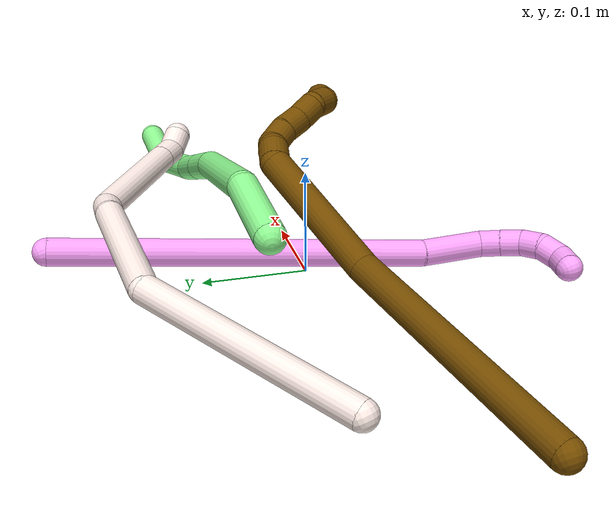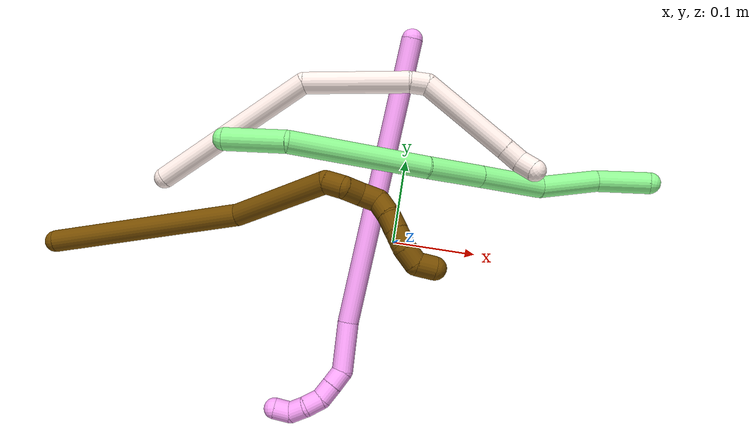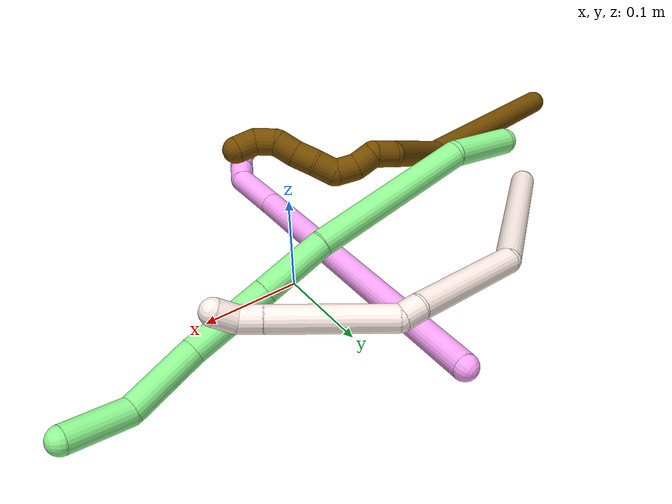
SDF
<sdf version="1.7">
 <world name="default">
  <model name="4">
   <static>0</static>
   <link name="4">
    <collision name="collision-cylinder-e_1_1_4">
     <pose>-0.015984 -0.058443 -0.159126 2.78961 -0.094012 -0.517208</pose>
     <geometry><cylinder><radius>0.0125</radius><length>0.340542</length></cylinder></geometry>
     <surface>
      <friction><ode><mu>1.16</mu><mu2>1.16</mu2><slip1>0</slip1><slip2>0</slip2></ode></friction>
      <contact><ode><kp>1e+06</kp><kd>1</kd><max_vel>0</max_vel><min_depth>0.001</min_depth></ode></contact>
     </surface>
    </collision>
    <visual name="visual-cylinder-e_1_1_4">
     <pose>-0.015984 -0.058443 -0.159126 2.78961 -0.094012 -0.517208</pose>
     <geometry><cylinder><radius>0.0125</radius><length>0.340542</length></cylinder></geometry>
     <material><ambient>1 0.65098 0.996078 1</ambient></material>
    </visual>
    <collision name="collision-cylinder-e_2_4_5">
     <pose>-0.033386 -0.122683 -0.34701 2.94267 -0.048302 -0.474997</pose>
     <geometry><cylinder><radius>0.0125</radius><length>0.05874</length></cylinder></geometry>
     <surface>
      <friction><ode><mu>1.16</mu><mu2>1.16</mu2><slip1>0</slip1><slip2>0</slip2></ode></friction>
      <contact><ode><kp>1e+06</kp><kd>1</kd><max_vel>0</max_vel><min_depth>0.001</min_depth></ode></contact>
     </surface>
    </collision>
    <visual name="visual-cylinder-e_2_4_5">
     <pose>-0.033386 -0.122683 -0.34701 2.94267 -0.048302 -0.474997</pose>
     <geometry><cylinder><radius>0.0125</radius><length>0.05874</length></cylinder></geometry>
     <material><ambient>1 0.65098 0.996078 1</ambient></material>
    </visual>
    <collision name="collision-cylinder-e_3_5_6">
     <pose>-0.031273 -0.133802 -0.383654 2.54802 0.355436 1.06209</pose>
     <geometry><cylinder><radius>0.0125</radius><length>0.020297</length></cylinder></geometry>
     <surface>
      <friction><ode><mu>1.16</mu><mu2>1.16</mu2><slip1>0</slip1><slip2>0</slip2></ode></friction>
      <contact><ode><kp>1e+06</kp><kd>1</kd><max_vel>0</max_vel><min_depth>0.001</min_depth></ode></contact>
     </surface>
    </collision>
    <visual name="visual-cylinder-e_3_5_6">
     <pose>-0.031273 -0.133802 -0.383654 2.54802 0.355436 1.06209</pose>
     <geometry><cylinder><radius>0.0125</radius><length>0.020297</length></cylinder></geometry>
     <material><ambient>1 0.65098 0.996078 1</ambient></material>
    </visual>
    <collision name="collision-cylinder-e_4_6_7">
     <pose>-0.024373 -0.144705 -0.399197 2.51161 0.341538 0.973534</pose>
     <geometry><cylinder><radius>0.0125</radius><length>0.020112</length></cylinder></geometry>
     <surface>
      <friction><ode><mu>1.16</mu><mu2>1.16</mu2><slip1>0</slip1><slip2>0</slip2></ode></friction>
      <contact><ode><kp>1e+06</kp><kd>1</kd><max_vel>0</max_vel><min_depth>0.001</min_depth></ode></contact>
     </surface>
    </collision>
    <visual name="visual-cylinder-e_4_6_7">
     <pose>-0.024373 -0.144705 -0.399197 2.51161 0.341538 0.973534</pose>
     <geometry><cylinder><radius>0.0125</radius><length>0.020112</length></cylinder></geometry>
     <material><ambient>1 0.65098 0.996078 1</ambient></material>
    </visual>
    <collision name="collision-cylinder-e_5_7_8">
     <pose>-0.016007 -0.157964 -0.411203 2.08623 0.51536 0.849348</pose>
     <geometry><cylinder><radius>0.0125</radius><length>0.02028</length></cylinder></geometry>
     <surface>
      <friction><ode><mu>1.16</mu><mu2>1.16</mu2><slip1>0</slip1><slip2>0</slip2></ode></friction>
      <contact><ode><kp>1e+06</kp><kd>1</kd><max_vel>0</max_vel><min_depth>0.001</min_depth></ode></contact>
     </surface>
    </collision>
    <visual name="visual-cylinder-e_5_7_8">
     <pose>-0.016007 -0.157964 -0.411203 2.08623 0.51536 0.849348</pose>
     <geometry><cylinder><radius>0.0125</radius><length>0.02028</length></cylinder></geometry>
     <material><ambient>1 0.65098 0.996078 1</ambient></material>
    </visual>
    <collision name="collision-cylinder-e_6_8_9">
     <pose>-0.009058 -0.174956 -0.418636 1.89057 0.196335 0.271038</pose>
     <geometry><cylinder><radius>0.0125</radius><length>0.020008</length></cylinder></geometry>
     <surface>
      <friction><ode><mu>1.16</mu><mu2>1.16</mu2><slip1>0</slip1><slip2>0</slip2></ode></friction>
      <contact><ode><kp>1e+06</kp><kd>1</kd><max_vel>0</max_vel><min_depth>0.001</min_depth></ode></contact>
     </surface>
    </collision>
    <visual name="visual-cylinder-e_6_8_9">
     <pose>-0.009058 -0.174956 -0.418636 1.89057 0.196335 0.271038</pose>
     <geometry><cylinder><radius>0.0125</radius><length>0.020008</length></cylinder></geometry>
     <material><ambient>1 0.65098 0.996078 1</ambient></material>
    </visual>
    <collision name="collision-cylinder-e_7_9_2">
     <pose>-0.001841 -0.192361 -0.419073 1.25449 0.553939 0.406454</pose>
     <geometry><cylinder><radius>0.0125</radius><length>0.02002</length></cylinder></geometry>
     <surface>
      <friction><ode><mu>1.16</mu><mu2>1.16</mu2><slip1>0</slip1><slip2>0</slip2></ode></friction>
      <contact><ode><kp>1e+06</kp><kd>1</kd><max_vel>0</max_vel><min_depth>0.001</min_depth></ode></contact>
     </surface>
    </collision>
    <visual name="visual-cylinder-e_7_9_2">
     <pose>-0.001841 -0.192361 -0.419073 1.25449 0.553939 0.406454</pose>
     <geometry><cylinder><radius>0.0125</radius><length>0.02002</length></cylinder></geometry>
     <material><ambient>1 0.65098 0.996078 1</ambient></material>
    </visual>
    <collision name="collision-sphere-2">
     <pose>0.003425 -0.200451 -0.416424 0 -0 0</pose>
     <geometry><sphere><radius>0.0125</radius></sphere></geometry>
     <surface>
      <friction><ode><mu>1.16</mu><mu2>1.16</mu2><slip1>0</slip1><slip2>0</slip2></ode></friction>
      <contact><ode><kp>1e+06</kp><kd>1</kd><max_vel>0</max_vel><min_depth>0.001</min_depth></ode></contact>
     </surface>
    </collision>
    <visual name="visual-sphere-2">
     <pose>0.003425 -0.200451 -0.416424 0 -0 0</pose>
     <geometry><sphere><radius>0.0125</radius></sphere></geometry>
     <material><ambient>1 0.65098 0.996078 1</ambient></material>
    </visual>
    <collision name="collision-sphere-9">
     <pose>-0.007106 -0.18427 -0.421721 0 -0 0</pose>
     <geometry><sphere><radius>0.0125</radius></sphere></geometry>
     <surface>
      <friction><ode><mu>1.16</mu><mu2>1.16</mu2><slip1>0</slip1><slip2>0</slip2></ode></friction>
      <contact><ode><kp>1e+06</kp><kd>1</kd><max_vel>0</max_vel><min_depth>0.001</min_depth></ode></contact>
     </surface>
    </collision>
    <visual name="visual-sphere-9">
     <pose>-0.007106 -0.18427 -0.421721 0 -0 0</pose>
     <geometry><sphere><radius>0.0125</radius></sphere></geometry>
     <material><ambient>1 0.65098 0.996078 1</ambient></material>
    </visual>
    <collision name="collision-sphere-4">
     <pose>-0.031968 -0.116886 -0.318253 0 -0 0</pose>
     <geometry><sphere><radius>0.0125</radius></sphere></geometry>
     <surface>
      <friction><ode><mu>1.16</mu><mu2>1.16</mu2><slip1>0</slip1><slip2>0</slip2></ode></friction>
      <contact><ode><kp>1e+06</kp><kd>1</kd><max_vel>0</max_vel><min_depth>0.001</min_depth></ode></contact>
     </surface>
    </collision>
    <visual name="visual-sphere-4">
     <pose>-0.031968 -0.116886 -0.318253 0 -0 0</pose>
     <geometry><sphere><radius>0.0125</radius></sphere></geometry>
     <material><ambient>1 0.65098 0.996078 1</ambient></material>
    </visual>
    <collision name="collision-sphere-1">
     <geometry><sphere><radius>0.0125</radius></sphere></geometry>
     <surface>
      <friction><ode><mu>1.16</mu><mu2>1.16</mu2><slip1>0</slip1><slip2>0</slip2></ode></friction>
      <contact><ode><kp>1e+06</kp><kd>1</kd><max_vel>0</max_vel><min_depth>0.001</min_depth></ode></contact>
     </surface>
    </collision>
    <visual name="visual-sphere-1">
     <geometry><sphere><radius>0.0125</radius></sphere></geometry>
     <material><ambient>1 0.65098 0.996078 1</ambient></material>
    </visual>
    <collision name="collision-sphere-8">
     <pose>-0.01101 -0.165641 -0.415552 0 -0 0</pose>
     <geometry><sphere><radius>0.0125</radius></sphere></geometry>
     <surface>
      <friction><ode><mu>1.16</mu><mu2>1.16</mu2><slip1>0</slip1><slip2>0</slip2></ode></friction>
      <contact><ode><kp>1e+06</kp><kd>1</kd><max_vel>0</max_vel><min_depth>0.001</min_depth></ode></contact>
     </surface>
    </collision>
    <visual name="visual-sphere-8">
     <pose>-0.01101 -0.165641 -0.415552 0 -0 0</pose>
     <geometry><sphere><radius>0.0125</radius></sphere></geometry>
     <material><ambient>1 0.65098 0.996078 1</ambient></material>
    </visual>
    <collision name="collision-sphere-5">
     <pose>-0.034804 -0.12848 -0.375768 0 -0 0</pose>
     <geometry><sphere><radius>0.0125</radius></sphere></geometry>
     <surface>
      <friction><ode><mu>1.16</mu><mu2>1.16</mu2><slip1>0</slip1><slip2>0</slip2></ode></friction>
      <contact><ode><kp>1e+06</kp><kd>1</kd><max_vel>0</max_vel><min_depth>0.001</min_depth></ode></contact>
     </surface>
    </collision>
    <visual name="visual-sphere-5">
     <pose>-0.034804 -0.12848 -0.375768 0 -0 0</pose>
     <geometry><sphere><radius>0.0125</radius></sphere></geometry>
     <material><ambient>1 0.65098 0.996078 1</ambient></material>
    </visual>
    <collision name="collision-sphere-6">
     <pose>-0.027741 -0.139123 -0.391541 0 -0 0</pose>
     <geometry><sphere><radius>0.0125</radius></sphere></geometry>
     <surface>
      <friction><ode><mu>1.16</mu><mu2>1.16</mu2><slip1>0</slip1><slip2>0</slip2></ode></friction>
      <contact><ode><kp>1e+06</kp><kd>1</kd><max_vel>0</max_vel><min_depth>0.001</min_depth></ode></contact>
     </surface>
    </collision>
    <visual name="visual-sphere-6">
     <pose>-0.027741 -0.139123 -0.391541 0 -0 0</pose>
     <geometry><sphere><radius>0.0125</radius></sphere></geometry>
     <material><ambient>1 0.65098 0.996078 1</ambient></material>
    </visual>
    <collision name="collision-sphere-7">
     <pose>-0.021005 -0.150287 -0.406854 0 -0 0</pose>
     <geometry><sphere><radius>0.0125</radius></sphere></geometry>
     <surface>
      <friction><ode><mu>1.16</mu><mu2>1.16</mu2><slip1>0</slip1><slip2>0</slip2></ode></friction>
      <contact><ode><kp>1e+06</kp><kd>1</kd><max_vel>0</max_vel><min_depth>0.001</min_depth></ode></contact>
     </surface>
    </collision>
    <visual name="visual-sphere-7">
     <pose>-0.021005 -0.150287 -0.406854 0 -0 0</pose>
     <geometry><sphere><radius>0.0125</radius></sphere></geometry>
     <material><ambient>1 0.65098 0.996078 1</ambient></material>
    </visual>
    <inertial>
     <pose>-0.018144 -0.08658 -0.230987 0 -0 0</pose>
     <mass>0.5</mass>
     <inertia>
      <ixx>0.00125</ixx>
      <ixy>0</ixy>
      <ixz>0</ixz>
      <iyy>-0.004307</iyy>
      <iyz>0</iyz>
      <izz>0.001419</izz>
     </inertia>
    </inertial>
   </link>
   <pose>-0.016804 0.235573 0.056164 1.89816 -0.995879 3.04177</pose>
  </model>
  <model name="11">
   <static>0</static>
   <link name="11">
    <collision name="collision-cylinder-e_1_1_4">
     <pose>0.038676 0.061826 0.069845 -0.724569 0.39306 -0.150637</pose>
     <geometry><cylinder><radius>0.0125</radius><length>0.201957</length></cylinder></geometry>
     <surface>
      <friction><ode><mu>1.16</mu><mu2>1.16</mu2><slip1>0</slip1><slip2>0</slip2></ode></friction>
      <contact><ode><kp>1e+06</kp><kd>1</kd><max_vel>0</max_vel><min_depth>0.001</min_depth></ode></contact>
     </surface>
    </collision>
    <visual name="visual-cylinder-e_1_1_4">
     <pose>0.038676 0.061826 0.069845 -0.724569 0.39306 -0.150637</pose>
     <geometry><cylinder><radius>0.0125</radius><length>0.201957</length></cylinder></geometry>
     <material><ambient>1 0.933333 0.909804 1</ambient></material>
    </visual>
    <collision name="collision-cylinder-e_2_4_5">
     <pose>0.124128 0.135902 0.176902 -0.318017 0.873578 -0.149456</pose>
     <geometry><cylinder><radius>0.0125</radius><length>0.122027</length></cylinder></geometry>
     <surface>
      <friction><ode><mu>1.16</mu><mu2>1.16</mu2><slip1>0</slip1><slip2>0</slip2></ode></friction>
      <contact><ode><kp>1e+06</kp><kd>1</kd><max_vel>0</max_vel><min_depth>0.001</min_depth></ode></contact>
     </surface>
    </collision>
    <visual name="visual-cylinder-e_2_4_5">
     <pose>0.124128 0.135902 0.176902 -0.318017 0.873578 -0.149456</pose>
     <geometry><cylinder><radius>0.0125</radius><length>0.122027</length></cylinder></geometry>
     <material><ambient>1 0.933333 0.909804 1</ambient></material>
    </visual>
    <collision name="collision-cylinder-e_3_5_6">
     <pose>0.179956 0.149999 0.218516 -0.397314 1.08553 -0.241678</pose>
     <geometry><cylinder><radius>0.0125</radius><length>0.020471</length></cylinder></geometry>
     <surface>
      <friction><ode><mu>1.16</mu><mu2>1.16</mu2><slip1>0</slip1><slip2>0</slip2></ode></friction>
      <contact><ode><kp>1e+06</kp><kd>1</kd><max_vel>0</max_vel><min_depth>0.001</min_depth></ode></contact>
     </surface>
    </collision>
    <visual name="visual-cylinder-e_3_5_6">
     <pose>0.179956 0.149999 0.218516 -0.397314 1.08553 -0.241678</pose>
     <geometry><cylinder><radius>0.0125</radius><length>0.020471</length></cylinder></geometry>
     <material><ambient>1 0.933333 0.909804 1</ambient></material>
    </visual>
    <collision name="collision-cylinder-e_4_6_7">
     <pose>0.237978 0.129417 0.240028 0.919117 1.04814 0.557204</pose>
     <geometry><cylinder><radius>0.0125</radius><length>0.113025</length></cylinder></geometry>
     <surface>
      <friction><ode><mu>1.16</mu><mu2>1.16</mu2><slip1>0</slip1><slip2>0</slip2></ode></friction>
      <contact><ode><kp>1e+06</kp><kd>1</kd><max_vel>0</max_vel><min_depth>0.001</min_depth></ode></contact>
     </surface>
    </collision>
    <visual name="visual-cylinder-e_4_6_7">
     <pose>0.237978 0.129417 0.240028 0.919117 1.04814 0.557204</pose>
     <geometry><cylinder><radius>0.0125</radius><length>0.113025</length></cylinder></geometry>
     <material><ambient>1 0.933333 0.909804 1</ambient></material>
    </visual>
    <collision name="collision-cylinder-e_5_7_8">
     <pose>0.296357 0.102498 0.260337 0.951813 1.0409 0.574495</pose>
     <geometry><cylinder><radius>0.0125</radius><length>0.021816</length></cylinder></geometry>
     <surface>
      <friction><ode><mu>1.16</mu><mu2>1.16</mu2><slip1>0</slip1><slip2>0</slip2></ode></friction>
      <contact><ode><kp>1e+06</kp><kd>1</kd><max_vel>0</max_vel><min_depth>0.001</min_depth></ode></contact>
     </surface>
    </collision>
    <visual name="visual-cylinder-e_5_7_8">
     <pose>0.296357 0.102498 0.260337 0.951813 1.0409 0.574495</pose>
     <geometry><cylinder><radius>0.0125</radius><length>0.021816</length></cylinder></geometry>
     <material><ambient>1 0.933333 0.909804 1</ambient></material>
    </visual>
    <collision name="collision-cylinder-e_6_8_2">
     <pose>0.31203 0.093179 0.270219 0.62562 0.64949 0.216919</pose>
     <geometry><cylinder><radius>0.0125</radius><length>0.020705</length></cylinder></geometry>
     <surface>
      <friction><ode><mu>1.16</mu><mu2>1.16</mu2><slip1>0</slip1><slip2>0</slip2></ode></friction>
      <contact><ode><kp>1e+06</kp><kd>1</kd><max_vel>0</max_vel><min_depth>0.001</min_depth></ode></contact>
     </surface>
    </collision>
    <visual name="visual-cylinder-e_6_8_2">
     <pose>0.31203 0.093179 0.270219 0.62562 0.64949 0.216919</pose>
     <geometry><cylinder><radius>0.0125</radius><length>0.020705</length></cylinder></geometry>
     <material><ambient>1 0.933333 0.909804 1</ambient></material>
    </visual>
    <collision name="collision-sphere-2">
     <pose>0.318291 0.088351 0.276902 0 -0 0</pose>
     <geometry><sphere><radius>0.0125</radius></sphere></geometry>
     <surface>
      <friction><ode><mu>1.16</mu><mu2>1.16</mu2><slip1>0</slip1><slip2>0</slip2></ode></friction>
      <contact><ode><kp>1e+06</kp><kd>1</kd><max_vel>0</max_vel><min_depth>0.001</min_depth></ode></contact>
     </surface>
    </collision>
    <visual name="visual-sphere-2">
     <pose>0.318291 0.088351 0.276902 0 -0 0</pose>
     <geometry><sphere><radius>0.0125</radius></sphere></geometry>
     <material><ambient>1 0.933333 0.909804 1</ambient></material>
    </visual>
    <collision name="collision-sphere-4">
     <pose>0.077353 0.123652 0.139691 0 -0 0</pose>
     <geometry><sphere><radius>0.0125</radius></sphere></geometry>
     <surface>
      <friction><ode><mu>1.16</mu><mu2>1.16</mu2><slip1>0</slip1><slip2>0</slip2></ode></friction>
      <contact><ode><kp>1e+06</kp><kd>1</kd><max_vel>0</max_vel><min_depth>0.001</min_depth></ode></contact>
     </surface>
    </collision>
    <visual name="visual-sphere-4">
     <pose>0.077353 0.123652 0.139691 0 -0 0</pose>
     <geometry><sphere><radius>0.0125</radius></sphere></geometry>
     <material><ambient>1 0.933333 0.909804 1</ambient></material>
    </visual>
    <collision name="collision-sphere-1">
     <geometry><sphere><radius>0.0125</radius></sphere></geometry>
     <surface>
      <friction><ode><mu>1.16</mu><mu2>1.16</mu2><slip1>0</slip1><slip2>0</slip2></ode></friction>
      <contact><ode><kp>1e+06</kp><kd>1</kd><max_vel>0</max_vel><min_depth>0.001</min_depth></ode></contact>
     </surface>
    </collision>
    <visual name="visual-sphere-1">
     <geometry><sphere><radius>0.0125</radius></sphere></geometry>
     <material><ambient>1 0.933333 0.909804 1</ambient></material>
    </visual>
    <collision name="collision-sphere-8">
     <pose>0.30577 0.098007 0.263536 0 -0 0</pose>
     <geometry><sphere><radius>0.0125</radius></sphere></geometry>
     <surface>
      <friction><ode><mu>1.16</mu><mu2>1.16</mu2><slip1>0</slip1><slip2>0</slip2></ode></friction>
      <contact><ode><kp>1e+06</kp><kd>1</kd><max_vel>0</max_vel><min_depth>0.001</min_depth></ode></contact>
     </surface>
    </collision>
    <visual name="visual-sphere-8">
     <pose>0.30577 0.098007 0.263536 0 -0 0</pose>
     <geometry><sphere><radius>0.0125</radius></sphere></geometry>
     <material><ambient>1 0.933333 0.909804 1</ambient></material>
    </visual>
    <collision name="collision-sphere-5">
     <pose>0.170903 0.148151 0.214114 0 -0 0</pose>
     <geometry><sphere><radius>0.0125</radius></sphere></geometry>
     <surface>
      <friction><ode><mu>1.16</mu><mu2>1.16</mu2><slip1>0</slip1><slip2>0</slip2></ode></friction>
      <contact><ode><kp>1e+06</kp><kd>1</kd><max_vel>0</max_vel><min_depth>0.001</min_depth></ode></contact>
     </surface>
    </collision>
    <visual name="visual-sphere-5">
     <pose>0.170903 0.148151 0.214114 0 -0 0</pose>
     <geometry><sphere><radius>0.0125</radius></sphere></geometry>
     <material><ambient>1 0.933333 0.909804 1</ambient></material>
    </visual>
    <collision name="collision-sphere-6">
     <pose>0.18901 0.151846 0.222918 0 -0 0</pose>
     <geometry><sphere><radius>0.0125</radius></sphere></geometry>
     <surface>
      <friction><ode><mu>1.16</mu><mu2>1.16</mu2><slip1>0</slip1><slip2>0</slip2></ode></friction>
      <contact><ode><kp>1e+06</kp><kd>1</kd><max_vel>0</max_vel><min_depth>0.001</min_depth></ode></contact>
     </surface>
    </collision>
    <visual name="visual-sphere-6">
     <pose>0.18901 0.151846 0.222918 0 -0 0</pose>
     <geometry><sphere><radius>0.0125</radius></sphere></geometry>
     <material><ambient>1 0.933333 0.909804 1</ambient></material>
    </visual>
    <collision name="collision-sphere-7">
     <pose>0.286945 0.106988 0.257138 0 -0 0</pose>
     <geometry><sphere><radius>0.0125</radius></sphere></geometry>
     <surface>
      <friction><ode><mu>1.16</mu><mu2>1.16</mu2><slip1>0</slip1><slip2>0</slip2></ode></friction>
      <contact><ode><kp>1e+06</kp><kd>1</kd><max_vel>0</max_vel><min_depth>0.001</min_depth></ode></contact>
     </surface>
    </collision>
    <visual name="visual-sphere-7">
     <pose>0.286945 0.106988 0.257138 0 -0 0</pose>
     <geometry><sphere><radius>0.0125</radius></sphere></geometry>
     <material><ambient>1 0.933333 0.909804 1</ambient></material>
    </visual>
    <inertial>
     <pose>0.13293 0.101866 0.157138 0 -0 0</pose>
     <mass>0.5</mass>
     <inertia>
      <ixx>0.000736</ixx>
      <ixy>0</ixy>
      <ixz>0</ixz>
      <iyy>0.000736</iyy>
      <iyz>0</iyz>
      <izz>-0.000882</izz>
     </inertia>
    </inertial>
   </link>
   <pose>-0.282739 0.033756 0.029391 -0.430027 0.40419 -0.32441</pose>
  </model>
  <model name="12">
   <static>0</static>
   <link name="12">
    <collision name="collision-cylinder-e_1_1_4">
     <pose>0.060462 0.016135 0.089961 -0.177465 0.584438 -0.053515</pose>
     <geometry><cylinder><radius>0.0125</radius><length>0.219171</length></cylinder></geometry>
     <surface>
      <friction><ode><mu>1.16</mu><mu2>1.16</mu2><slip1>0</slip1><slip2>0</slip2></ode></friction>
      <contact><ode><kp>1e+06</kp><kd>1</kd><max_vel>0</max_vel><min_depth>0.001</min_depth></ode></contact>
     </surface>
    </collision>
    <visual name="visual-cylinder-e_1_1_4">
     <pose>0.060462 0.016135 0.089961 -0.177465 0.584438 -0.053515</pose>
     <geometry><cylinder><radius>0.0125</radius><length>0.219171</length></cylinder></geometry>
     <material><ambient>0.466667 0.301961 0 1</ambient></material>
    </visual>
    <collision name="collision-cylinder-e_2_4_5">
     <pose>0.134034 0.04805 0.235567 -0.276345 0.222917 -0.031125</pose>
     <geometry><cylinder><radius>0.0125</radius><length>0.118612</length></cylinder></geometry>
     <surface>
      <friction><ode><mu>1.16</mu><mu2>1.16</mu2><slip1>0</slip1><slip2>0</slip2></ode></friction>
      <contact><ode><kp>1e+06</kp><kd>1</kd><max_vel>0</max_vel><min_depth>0.001</min_depth></ode></contact>
     </surface>
    </collision>
    <visual name="visual-cylinder-e_2_4_5">
     <pose>0.134034 0.04805 0.235567 -0.276345 0.222917 -0.031125</pose>
     <geometry><cylinder><radius>0.0125</radius><length>0.118612</length></cylinder></geometry>
     <material><ambient>0.466667 0.301961 0 1</ambient></material>
    </visual>
    <collision name="collision-cylinder-e_3_5_6">
     <pose>0.151786 0.060846 0.300157 0.32204 0.457249 0.075555</pose>
     <geometry><cylinder><radius>0.0125</radius><length>0.02102</length></cylinder></geometry>
     <surface>
      <friction><ode><mu>1.16</mu><mu2>1.16</mu2><slip1>0</slip1><slip2>0</slip2></ode></friction>
      <contact><ode><kp>1e+06</kp><kd>1</kd><max_vel>0</max_vel><min_depth>0.001</min_depth></ode></contact>
     </surface>
    </collision>
    <visual name="visual-cylinder-e_3_5_6">
     <pose>0.151786 0.060846 0.300157 0.32204 0.457249 0.075555</pose>
     <geometry><cylinder><radius>0.0125</radius><length>0.02102</length></cylinder></geometry>
     <material><ambient>0.466667 0.301961 0 1</ambient></material>
    </visual>
    <collision name="collision-cylinder-e_4_6_7">
     <pose>0.16564 0.055176 0.312144 0.723324 1.15598 0.483867</pose>
     <geometry><cylinder><radius>0.0125</radius><length>0.020136</length></cylinder></geometry>
     <surface>
      <friction><ode><mu>1.16</mu><mu2>1.16</mu2><slip1>0</slip1><slip2>0</slip2></ode></friction>
      <contact><ode><kp>1e+06</kp><kd>1</kd><max_vel>0</max_vel><min_depth>0.001</min_depth></ode></contact>
     </surface>
    </collision>
    <visual name="visual-cylinder-e_4_6_7">
     <pose>0.16564 0.055176 0.312144 0.723324 1.15598 0.483867</pose>
     <geometry><cylinder><radius>0.0125</radius><length>0.020136</length></cylinder></geometry>
     <material><ambient>0.466667 0.301961 0 1</ambient></material>
    </visual>
    <collision name="collision-cylinder-e_5_7_8">
     <pose>0.181875 0.049117 0.321981 0.460802 0.746679 0.183249</pose>
     <geometry><cylinder><radius>0.0125</radius><length>0.020672</length></cylinder></geometry>
     <surface>
      <friction><ode><mu>1.16</mu><mu2>1.16</mu2><slip1>0</slip1><slip2>0</slip2></ode></friction>
      <contact><ode><kp>1e+06</kp><kd>1</kd><max_vel>0</max_vel><min_depth>0.001</min_depth></ode></contact>
     </surface>
    </collision>
    <visual name="visual-cylinder-e_5_7_8">
     <pose>0.181875 0.049117 0.321981 0.460802 0.746679 0.183249</pose>
     <geometry><cylinder><radius>0.0125</radius><length>0.020672</length></cylinder></geometry>
     <material><ambient>0.466667 0.301961 0 1</ambient></material>
    </visual>
    <collision name="collision-cylinder-e_6_8_9">
     <pose>0.189573 0.03812 0.335229 0.868408 0.067748 0.031426</pose>
     <geometry><cylinder><radius>0.0125</radius><length>0.020022</length></cylinder></geometry>
     <surface>
      <friction><ode><mu>1.16</mu><mu2>1.16</mu2><slip1>0</slip1><slip2>0</slip2></ode></friction>
      <contact><ode><kp>1e+06</kp><kd>1</kd><max_vel>0</max_vel><min_depth>0.001</min_depth></ode></contact>
     </surface>
    </collision>
    <visual name="visual-cylinder-e_6_8_9">
     <pose>0.189573 0.03812 0.335229 0.868408 0.067748 0.031426</pose>
     <geometry><cylinder><radius>0.0125</radius><length>0.020022</length></cylinder></geometry>
     <material><ambient>0.466667 0.301961 0 1</ambient></material>
    </visual>
    <collision name="collision-cylinder-e_7_9_10">
     <pose>0.191292 0.021758 0.346489 1.06778 0.104051 0.061547</pose>
     <geometry><cylinder><radius>0.0125</radius><length>0.020054</length></cylinder></geometry>
     <surface>
      <friction><ode><mu>1.16</mu><mu2>1.16</mu2><slip1>0</slip1><slip2>0</slip2></ode></friction>
      <contact><ode><kp>1e+06</kp><kd>1</kd><max_vel>0</max_vel><min_depth>0.001</min_depth></ode></contact>
     </surface>
    </collision>
    <visual name="visual-cylinder-e_7_9_10">
     <pose>0.191292 0.021758 0.346489 1.06778 0.104051 0.061547</pose>
     <geometry><cylinder><radius>0.0125</radius><length>0.020054</length></cylinder></geometry>
     <material><ambient>0.466667 0.301961 0 1</ambient></material>
    </visual>
    <collision name="collision-cylinder-e_8_10_11">
     <pose>0.192086 0.004547 0.356738 0.999944 -0.024535 -0.013403</pose>
     <geometry><cylinder><radius>0.0125</radius><length>0.020147</length></cylinder></geometry>
     <surface>
      <friction><ode><mu>1.16</mu><mu2>1.16</mu2><slip1>0</slip1><slip2>0</slip2></ode></friction>
      <contact><ode><kp>1e+06</kp><kd>1</kd><max_vel>0</max_vel><min_depth>0.001</min_depth></ode></contact>
     </surface>
    </collision>
    <visual name="visual-cylinder-e_8_10_11">
     <pose>0.192086 0.004547 0.356738 0.999944 -0.024535 -0.013403</pose>
     <geometry><cylinder><radius>0.0125</radius><length>0.020147</length></cylinder></geometry>
     <material><ambient>0.466667 0.301961 0 1</ambient></material>
    </visual>
    <collision name="collision-cylinder-e_9_11_12">
     <pose>0.196478 -0.011862 0.366193 1.10261 0.480777 0.299207</pose>
     <geometry><cylinder><radius>0.0125</radius><length>0.020061</length></cylinder></geometry>
     <surface>
      <friction><ode><mu>1.16</mu><mu2>1.16</mu2><slip1>0</slip1><slip2>0</slip2></ode></friction>
      <contact><ode><kp>1e+06</kp><kd>1</kd><max_vel>0</max_vel><min_depth>0.001</min_depth></ode></contact>
     </surface>
    </collision>
    <visual name="visual-cylinder-e_9_11_12">
     <pose>0.196478 -0.011862 0.366193 1.10261 0.480777 0.299207</pose>
     <geometry><cylinder><radius>0.0125</radius><length>0.020061</length></cylinder></geometry>
     <material><ambient>0.466667 0.301961 0 1</ambient></material>
    </visual>
    <collision name="collision-cylinder-e_10_12_2">
     <pose>0.208792 -0.021874 0.376356 0.32548 0.868818 0.152066</pose>
     <geometry><cylinder><radius>0.0125</radius><length>0.020104</length></cylinder></geometry>
     <surface>
      <friction><ode><mu>1.16</mu><mu2>1.16</mu2><slip1>0</slip1><slip2>0</slip2></ode></friction>
      <contact><ode><kp>1e+06</kp><kd>1</kd><max_vel>0</max_vel><min_depth>0.001</min_depth></ode></contact>
     </surface>
    </collision>
    <visual name="visual-cylinder-e_10_12_2">
     <pose>0.208792 -0.021874 0.376356 0.32548 0.868818 0.152066</pose>
     <geometry><cylinder><radius>0.0125</radius><length>0.020104</length></cylinder></geometry>
     <material><ambient>0.466667 0.301961 0 1</ambient></material>
    </visual>
    <collision name="collision-sphere-2">
     <pose>0.216467 -0.02395 0.382506 0 -0 0</pose>
     <geometry><sphere><radius>0.0125</radius></sphere></geometry>
     <surface>
      <friction><ode><mu>1.16</mu><mu2>1.16</mu2><slip1>0</slip1><slip2>0</slip2></ode></friction>
      <contact><ode><kp>1e+06</kp><kd>1</kd><max_vel>0</max_vel><min_depth>0.001</min_depth></ode></contact>
     </surface>
    </collision>
    <visual name="visual-sphere-2">
     <pose>0.216467 -0.02395 0.382506 0 -0 0</pose>
     <geometry><sphere><radius>0.0125</radius></sphere></geometry>
     <material><ambient>0.466667 0.301961 0 1</ambient></material>
    </visual>
    <collision name="collision-sphere-12">
     <pose>0.201117 -0.019799 0.370206 0 -0 0</pose>
     <geometry><sphere><radius>0.0125</radius></sphere></geometry>
     <surface>
      <friction><ode><mu>1.16</mu><mu2>1.16</mu2><slip1>0</slip1><slip2>0</slip2></ode></friction>
      <contact><ode><kp>1e+06</kp><kd>1</kd><max_vel>0</max_vel><min_depth>0.001</min_depth></ode></contact>
     </surface>
    </collision>
    <visual name="visual-sphere-12">
     <pose>0.201117 -0.019799 0.370206 0 -0 0</pose>
     <geometry><sphere><radius>0.0125</radius></sphere></geometry>
     <material><ambient>0.466667 0.301961 0 1</ambient></material>
    </visual>
    <collision name="collision-sphere-11">
     <pose>0.191839 -0.003926 0.362179 0 -0 0</pose>
     <geometry><sphere><radius>0.0125</radius></sphere></geometry>
     <surface>
      <friction><ode><mu>1.16</mu><mu2>1.16</mu2><slip1>0</slip1><slip2>0</slip2></ode></friction>
      <contact><ode><kp>1e+06</kp><kd>1</kd><max_vel>0</max_vel><min_depth>0.001</min_depth></ode></contact>
     </surface>
    </collision>
    <visual name="visual-sphere-11">
     <pose>0.191839 -0.003926 0.362179 0 -0 0</pose>
     <geometry><sphere><radius>0.0125</radius></sphere></geometry>
     <material><ambient>0.466667 0.301961 0 1</ambient></material>
    </visual>
    <collision name="collision-sphere-10">
     <pose>0.192333 0.013021 0.351296 0 -0 0</pose>
     <geometry><sphere><radius>0.0125</radius></sphere></geometry>
     <surface>
      <friction><ode><mu>1.16</mu><mu2>1.16</mu2><slip1>0</slip1><slip2>0</slip2></ode></friction>
      <contact><ode><kp>1e+06</kp><kd>1</kd><max_vel>0</max_vel><min_depth>0.001</min_depth></ode></contact>
     </surface>
    </collision>
    <visual name="visual-sphere-10">
     <pose>0.192333 0.013021 0.351296 0 -0 0</pose>
     <geometry><sphere><radius>0.0125</radius></sphere></geometry>
     <material><ambient>0.466667 0.301961 0 1</ambient></material>
    </visual>
    <collision name="collision-sphere-9">
     <pose>0.190251 0.030496 0.341681 0 -0 0</pose>
     <geometry><sphere><radius>0.0125</radius></sphere></geometry>
     <surface>
      <friction><ode><mu>1.16</mu><mu2>1.16</mu2><slip1>0</slip1><slip2>0</slip2></ode></friction>
      <contact><ode><kp>1e+06</kp><kd>1</kd><max_vel>0</max_vel><min_depth>0.001</min_depth></ode></contact>
     </surface>
    </collision>
    <visual name="visual-sphere-9">
     <pose>0.190251 0.030496 0.341681 0 -0 0</pose>
     <geometry><sphere><radius>0.0125</radius></sphere></geometry>
     <material><ambient>0.466667 0.301961 0 1</ambient></material>
    </visual>
    <collision name="collision-sphere-4">
     <pose>0.120923 0.032269 0.179923 0 -0 0</pose>
     <geometry><sphere><radius>0.0125</radius></sphere></geometry>
     <surface>
      <friction><ode><mu>1.16</mu><mu2>1.16</mu2><slip1>0</slip1><slip2>0</slip2></ode></friction>
      <contact><ode><kp>1e+06</kp><kd>1</kd><max_vel>0</max_vel><min_depth>0.001</min_depth></ode></contact>
     </surface>
    </collision>
    <visual name="visual-sphere-4">
     <pose>0.120923 0.032269 0.179923 0 -0 0</pose>
     <geometry><sphere><radius>0.0125</radius></sphere></geometry>
     <material><ambient>0.466667 0.301961 0 1</ambient></material>
    </visual>
    <collision name="collision-sphere-1">
     <geometry><sphere><radius>0.0125</radius></sphere></geometry>
     <surface>
      <friction><ode><mu>1.16</mu><mu2>1.16</mu2><slip1>0</slip1><slip2>0</slip2></ode></friction>
      <contact><ode><kp>1e+06</kp><kd>1</kd><max_vel>0</max_vel><min_depth>0.001</min_depth></ode></contact>
     </surface>
    </collision>
    <visual name="visual-sphere-1">
     <geometry><sphere><radius>0.0125</radius></sphere></geometry>
     <material><ambient>0.466667 0.301961 0 1</ambient></material>
    </visual>
    <collision name="collision-sphere-8">
     <pose>0.188895 0.045744 0.328776 0 -0 0</pose>
     <geometry><sphere><radius>0.0125</radius></sphere></geometry>
     <surface>
      <friction><ode><mu>1.16</mu><mu2>1.16</mu2><slip1>0</slip1><slip2>0</slip2></ode></friction>
      <contact><ode><kp>1e+06</kp><kd>1</kd><max_vel>0</max_vel><min_depth>0.001</min_depth></ode></contact>
     </surface>
    </collision>
    <visual name="visual-sphere-8">
     <pose>0.188895 0.045744 0.328776 0 -0 0</pose>
     <geometry><sphere><radius>0.0125</radius></sphere></geometry>
     <material><ambient>0.466667 0.301961 0 1</ambient></material>
    </visual>
    <collision name="collision-sphere-5">
     <pose>0.147146 0.063831 0.291211 0 -0 0</pose>
     <geometry><sphere><radius>0.0125</radius></sphere></geometry>
     <surface>
      <friction><ode><mu>1.16</mu><mu2>1.16</mu2><slip1>0</slip1><slip2>0</slip2></ode></friction>
      <contact><ode><kp>1e+06</kp><kd>1</kd><max_vel>0</max_vel><min_depth>0.001</min_depth></ode></contact>
     </surface>
    </collision>
    <visual name="visual-sphere-5">
     <pose>0.147146 0.063831 0.291211 0 -0 0</pose>
     <geometry><sphere><radius>0.0125</radius></sphere></geometry>
     <material><ambient>0.466667 0.301961 0 1</ambient></material>
    </visual>
    <collision name="collision-sphere-6">
     <pose>0.156426 0.057862 0.309103 0 -0 0</pose>
     <geometry><sphere><radius>0.0125</radius></sphere></geometry>
     <surface>
      <friction><ode><mu>1.16</mu><mu2>1.16</mu2><slip1>0</slip1><slip2>0</slip2></ode></friction>
      <contact><ode><kp>1e+06</kp><kd>1</kd><max_vel>0</max_vel><min_depth>0.001</min_depth></ode></contact>
     </surface>
    </collision>
    <visual name="visual-sphere-6">
     <pose>0.156426 0.057862 0.309103 0 -0 0</pose>
     <geometry><sphere><radius>0.0125</radius></sphere></geometry>
     <material><ambient>0.466667 0.301961 0 1</ambient></material>
    </visual>
    <collision name="collision-sphere-7">
     <pose>0.174854 0.05249 0.315186 0 -0 0</pose>
     <geometry><sphere><radius>0.0125</radius></sphere></geometry>
     <surface>
      <friction><ode><mu>1.16</mu><mu2>1.16</mu2><slip1>0</slip1><slip2>0</slip2></ode></friction>
      <contact><ode><kp>1e+06</kp><kd>1</kd><max_vel>0</max_vel><min_depth>0.001</min_depth></ode></contact>
     </surface>
    </collision>
    <visual name="visual-sphere-7">
     <pose>0.174854 0.05249 0.315186 0 -0 0</pose>
     <geometry><sphere><radius>0.0125</radius></sphere></geometry>
     <material><ambient>0.466667 0.301961 0 1</ambient></material>
    </visual>
    <inertial>
     <pose>0.118152 0.026509 0.205338 0 -0 0</pose>
     <mass>0.5</mass>
     <inertia>
      <ixx>0.000862</ixx>
      <ixy>0</ixy>
      <ixz>0</ixz>
      <iyy>0.000978</iyy>
      <iyz>0</iyz>
      <izz>-0.000658</izz>
     </inertia>
    </inertial>
   </link>
   <pose>-0.388338 -0.05935 0.054986 -0.053931 0.817098 0.090205</pose>
  </model>
  <model name="13">
   <static>0</static>
   <link name="13">
    <collision name="collision-cylinder-e_1_1_4">
     <pose>0.005663 -0.001261 -0.034385 3.10493 0.163107 2.7003</pose>
     <geometry><cylinder><radius>0.0125</radius><length>0.069742</length></cylinder></geometry>
     <surface>
      <friction><ode><mu>1.16</mu><mu2>1.16</mu2><slip1>0</slip1><slip2>0</slip2></ode></friction>
      <contact><ode><kp>1e+06</kp><kd>1</kd><max_vel>0</max_vel><min_depth>0.001</min_depth></ode></contact>
     </surface>
    </collision>
    <visual name="visual-cylinder-e_1_1_4">
     <pose>0.005663 -0.001261 -0.034385 3.10493 0.163107 2.7003</pose>
     <geometry><cylinder><radius>0.0125</radius><length>0.069742</length></cylinder></geometry>
     <material><ambient>0.564706 0.984314 0.572549 1</ambient></material>
    </visual>
    <collision name="collision-cylinder-e_2_4_5">
     <pose>0.032978 0.025955 -0.138234 -2.75253 0.280804 -1.24453</pose>
     <geometry><cylinder><radius>0.0125</radius><length>0.15627</length></cylinder></geometry>
     <surface>
      <friction><ode><mu>1.16</mu><mu2>1.16</mu2><slip1>0</slip1><slip2>0</slip2></ode></friction>
      <contact><ode><kp>1e+06</kp><kd>1</kd><max_vel>0</max_vel><min_depth>0.001</min_depth></ode></contact>
     </surface>
    </collision>
    <visual name="visual-cylinder-e_2_4_5">
     <pose>0.032978 0.025955 -0.138234 -2.75253 0.280804 -1.24453</pose>
     <geometry><cylinder><radius>0.0125</radius><length>0.15627</length></cylinder></geometry>
     <material><ambient>0.564706 0.984314 0.572549 1</ambient></material>
    </visual>
    <collision name="collision-cylinder-e_3_5_6">
     <pose>0.065977 0.069084 -0.234648 -2.64366 0.35425 -1.22689</pose>
     <geometry><cylinder><radius>0.0125</radius><length>0.065412</length></cylinder></geometry>
     <surface>
      <friction><ode><mu>1.16</mu><mu2>1.16</mu2><slip1>0</slip1><slip2>0</slip2></ode></friction>
      <contact><ode><kp>1e+06</kp><kd>1</kd><max_vel>0</max_vel><min_depth>0.001</min_depth></ode></contact>
     </surface>
    </collision>
    <visual name="visual-cylinder-e_3_5_6">
     <pose>0.065977 0.069084 -0.234648 -2.64366 0.35425 -1.22689</pose>
     <geometry><cylinder><radius>0.0125</radius><length>0.065412</length></cylinder></geometry>
     <material><ambient>0.564706 0.984314 0.572549 1</ambient></material>
    </visual>
    <collision name="collision-cylinder-e_4_6_7">
     <pose>0.090546 0.10136 -0.293994 -2.6433 0.344282 -1.19891</pose>
     <geometry><cylinder><radius>0.0125</radius><length>0.078357</length></cylinder></geometry>
     <surface>
      <friction><ode><mu>1.16</mu><mu2>1.16</mu2><slip1>0</slip1><slip2>0</slip2></ode></friction>
      <contact><ode><kp>1e+06</kp><kd>1</kd><max_vel>0</max_vel><min_depth>0.001</min_depth></ode></contact>
     </surface>
    </collision>
    <visual name="visual-cylinder-e_4_6_7">
     <pose>0.090546 0.10136 -0.293994 -2.6433 0.344282 -1.19891</pose>
     <geometry><cylinder><radius>0.0125</radius><length>0.078357</length></cylinder></geometry>
     <material><ambient>0.564706 0.984314 0.572549 1</ambient></material>
    </visual>
    <collision name="collision-cylinder-e_5_7_8">
     <pose>0.120828 0.125857 -0.356604 -2.91798 0.503218 -2.31799</pose>
     <geometry><cylinder><radius>0.0125</radius><length>0.070744</length></cylinder></geometry>
     <surface>
      <friction><ode><mu>1.16</mu><mu2>1.16</mu2><slip1>0</slip1><slip2>0</slip2></ode></friction>
      <contact><ode><kp>1e+06</kp><kd>1</kd><max_vel>0</max_vel><min_depth>0.001</min_depth></ode></contact>
     </surface>
    </collision>
    <visual name="visual-cylinder-e_5_7_8">
     <pose>0.120828 0.125857 -0.356604 -2.91798 0.503218 -2.31799</pose>
     <geometry><cylinder><radius>0.0125</radius><length>0.070744</length></cylinder></geometry>
     <material><ambient>0.564706 0.984314 0.572549 1</ambient></material>
    </visual>
    <collision name="collision-cylinder-e_6_8_2">
     <pose>0.143286 0.131979 -0.416053 3.11593 0.182617 2.8631</pose>
     <geometry><cylinder><radius>0.0125</radius><length>0.059475</length></cylinder></geometry>
     <surface>
      <friction><ode><mu>1.16</mu><mu2>1.16</mu2><slip1>0</slip1><slip2>0</slip2></ode></friction>
      <contact><ode><kp>1e+06</kp><kd>1</kd><max_vel>0</max_vel><min_depth>0.001</min_depth></ode></contact>
     </surface>
    </collision>
    <visual name="visual-cylinder-e_6_8_2">
     <pose>0.143286 0.131979 -0.416053 3.11593 0.182617 2.8631</pose>
     <geometry><cylinder><radius>0.0125</radius><length>0.059475</length></cylinder></geometry>
     <material><ambient>0.564706 0.984314 0.572549 1</ambient></material>
    </visual>
    <collision name="collision-sphere-2">
     <pose>0.148687 0.131228 -0.445286 0 -0 0</pose>
     <geometry><sphere><radius>0.0125</radius></sphere></geometry>
     <surface>
      <friction><ode><mu>1.16</mu><mu2>1.16</mu2><slip1>0</slip1><slip2>0</slip2></ode></friction>
      <contact><ode><kp>1e+06</kp><kd>1</kd><max_vel>0</max_vel><min_depth>0.001</min_depth></ode></contact>
     </surface>
    </collision>
    <visual name="visual-sphere-2">
     <pose>0.148687 0.131228 -0.445286 0 -0 0</pose>
     <geometry><sphere><radius>0.0125</radius></sphere></geometry>
     <material><ambient>0.564706 0.984314 0.572549 1</ambient></material>
    </visual>
    <collision name="collision-sphere-4">
     <pose>0.011325 -0.002522 -0.06877 0 -0 0</pose>
     <geometry><sphere><radius>0.0125</radius></sphere></geometry>
     <surface>
      <friction><ode><mu>1.16</mu><mu2>1.16</mu2><slip1>0</slip1><slip2>0</slip2></ode></friction>
      <contact><ode><kp>1e+06</kp><kd>1</kd><max_vel>0</max_vel><min_depth>0.001</min_depth></ode></contact>
     </surface>
    </collision>
    <visual name="visual-sphere-4">
     <pose>0.011325 -0.002522 -0.06877 0 -0 0</pose>
     <geometry><sphere><radius>0.0125</radius></sphere></geometry>
     <material><ambient>0.564706 0.984314 0.572549 1</ambient></material>
    </visual>
    <collision name="collision-sphere-1">
     <geometry><sphere><radius>0.0125</radius></sphere></geometry>
     <surface>
      <friction><ode><mu>1.16</mu><mu2>1.16</mu2><slip1>0</slip1><slip2>0</slip2></ode></friction>
      <contact><ode><kp>1e+06</kp><kd>1</kd><max_vel>0</max_vel><min_depth>0.001</min_depth></ode></contact>
     </surface>
    </collision>
    <visual name="visual-sphere-1">
     <geometry><sphere><radius>0.0125</radius></sphere></geometry>
     <material><ambient>0.564706 0.984314 0.572549 1</ambient></material>
    </visual>
    <collision name="collision-sphere-8">
     <pose>0.137886 0.132729 -0.38682 0 -0 0</pose>
     <geometry><sphere><radius>0.0125</radius></sphere></geometry>
     <surface>
      <friction><ode><mu>1.16</mu><mu2>1.16</mu2><slip1>0</slip1><slip2>0</slip2></ode></friction>
      <contact><ode><kp>1e+06</kp><kd>1</kd><max_vel>0</max_vel><min_depth>0.001</min_depth></ode></contact>
     </surface>
    </collision>
    <visual name="visual-sphere-8">
     <pose>0.137886 0.132729 -0.38682 0 -0 0</pose>
     <geometry><sphere><radius>0.0125</radius></sphere></geometry>
     <material><ambient>0.564706 0.984314 0.572549 1</ambient></material>
    </visual>
    <collision name="collision-sphere-5">
     <pose>0.054632 0.054433 -0.207698 0 -0 0</pose>
     <geometry><sphere><radius>0.0125</radius></sphere></geometry>
     <surface>
      <friction><ode><mu>1.16</mu><mu2>1.16</mu2><slip1>0</slip1><slip2>0</slip2></ode></friction>
      <contact><ode><kp>1e+06</kp><kd>1</kd><max_vel>0</max_vel><min_depth>0.001</min_depth></ode></contact>
     </surface>
    </collision>
    <visual name="visual-sphere-5">
     <pose>0.054632 0.054433 -0.207698 0 -0 0</pose>
     <geometry><sphere><radius>0.0125</radius></sphere></geometry>
     <material><ambient>0.564706 0.984314 0.572549 1</ambient></material>
    </visual>
    <collision name="collision-sphere-6">
     <pose>0.077323 0.083735 -0.261599 0 -0 0</pose>
     <geometry><sphere><radius>0.0125</radius></sphere></geometry>
     <surface>
      <friction><ode><mu>1.16</mu><mu2>1.16</mu2><slip1>0</slip1><slip2>0</slip2></ode></friction>
      <contact><ode><kp>1e+06</kp><kd>1</kd><max_vel>0</max_vel><min_depth>0.001</min_depth></ode></contact>
     </surface>
    </collision>
    <visual name="visual-sphere-6">
     <pose>0.077323 0.083735 -0.261599 0 -0 0</pose>
     <geometry><sphere><radius>0.0125</radius></sphere></geometry>
     <material><ambient>0.564706 0.984314 0.572549 1</ambient></material>
    </visual>
    <collision name="collision-sphere-7">
     <pose>0.10377 0.118986 -0.326389 0 -0 0</pose>
     <geometry><sphere><radius>0.0125</radius></sphere></geometry>
     <surface>
      <friction><ode><mu>1.16</mu><mu2>1.16</mu2><slip1>0</slip1><slip2>0</slip2></ode></friction>
      <contact><ode><kp>1e+06</kp><kd>1</kd><max_vel>0</max_vel><min_depth>0.001</min_depth></ode></contact>
     </surface>
    </collision>
    <visual name="visual-sphere-7">
     <pose>0.10377 0.118986 -0.326389 0 -0 0</pose>
     <geometry><sphere><radius>0.0125</radius></sphere></geometry>
     <material><ambient>0.564706 0.984314 0.572549 1</ambient></material>
    </visual>
    <inertial>
     <pose>0.068058 0.066365 -0.224715 0 -0 0</pose>
     <mass>0.5</mass>
     <inertia>
      <ixx>-0.000289</ixx>
      <ixy>0</ixy>
      <ixz>0</ixz>
      <iyy>-0.000351</iyy>
      <iyz>0</iyz>
      <izz>-0.000326</izz>
     </inertia>
    </inertial>
   </link>
   <pose>-0.20097 0.077836 0.131338 -1.83543 0.451741 1.36804</pose>
  </model>
 </world>
</sdf>
